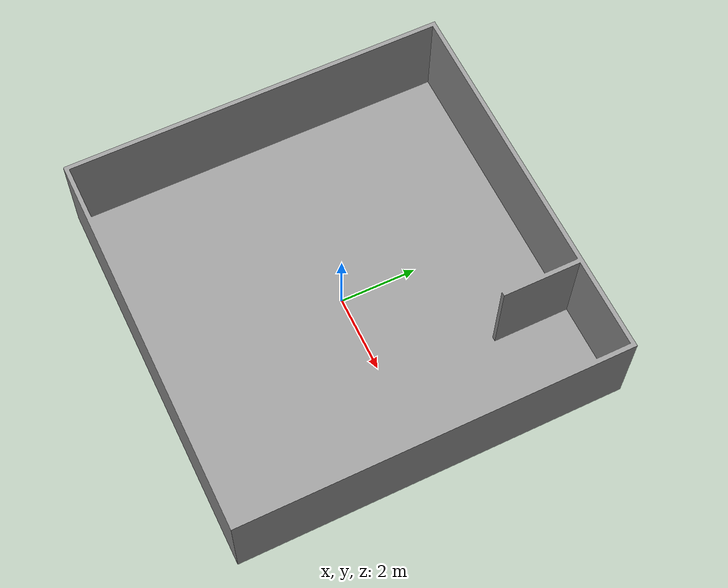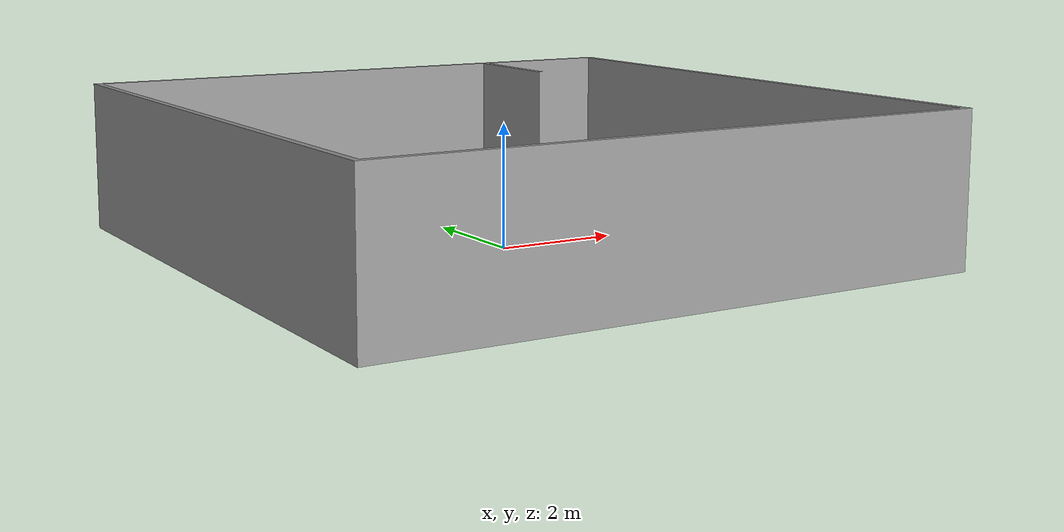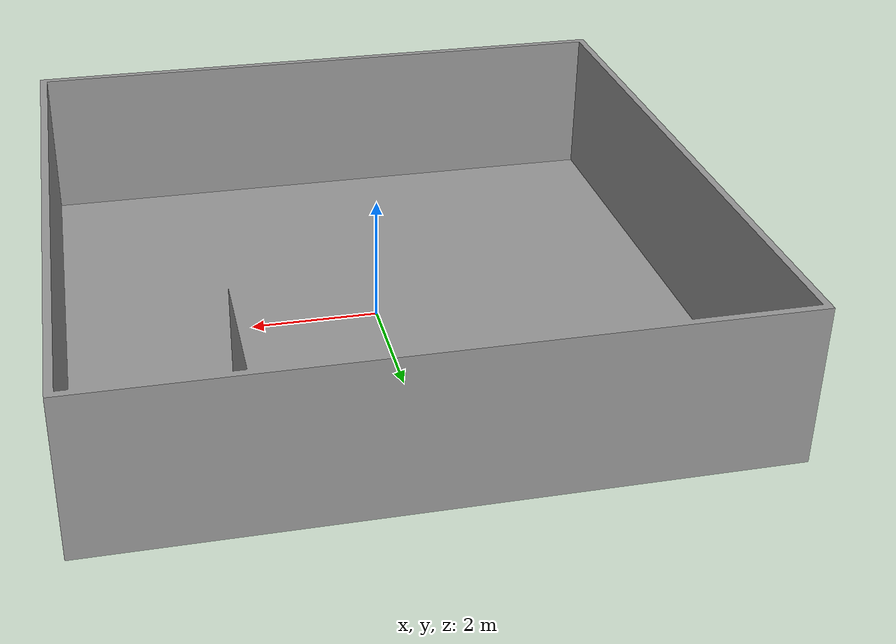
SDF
<?xml version='1.0'?>
<sdf version="1.5">
  <model name="lab"> <!-- Very important to change-->
    <static>true</static>
    <pose>0 0 0 0 0 0</pose> <!-- Translation: X Y Z and Rotation: Roll Pitch Yaw (In Radian)-->
    <link name="body">

    <inertial> >
    <mass>0</mass>
      <inertia>
        <ixx>0</ixx>
        <ixy>0</ixy>
        <ixz>0</ixz>
        <iyy>0</iyy>
        <iyz>0</iyz>
        <izz>0</izz>
      </inertia>
    </inertial>

       <collision name="collision"> <!-- You can use mesh like below -->
        <geometry>
          <mesh><!-- Very important to change-->
             <uri>/home/orion92/catkin_ws/src/atg/Environment/models/lab/meshes/lab.stl</uri>
             <scale>0.001 0.001 0.001</scale>
          </mesh>
        </geometry>
      </collision>

      <visual name="visual">
        <geometry>
          <mesh><!-- Very important to change-->
             <uri>/home/orion92/catkin_ws/src/atg/Environment/models/lab/meshes/lab.stl</uri>
             <scale>0.001 0.001 0.001</scale>
          </mesh>
        </geometry>

        <material>
          <script> <!-- Very important to change-->
             <uri>/home/orion92/catkin_ws/src/atg/Environment/models/lab/materials/scripts</uri>
             <uri>/home/orion92/catkin_ws/src/atg/Environment/models/lab/materials/textures</uri>
             <name>Gazebo/Grey</name>
          </script>
        </material>
      </visual>

    </link>
  </model>
</sdf>
